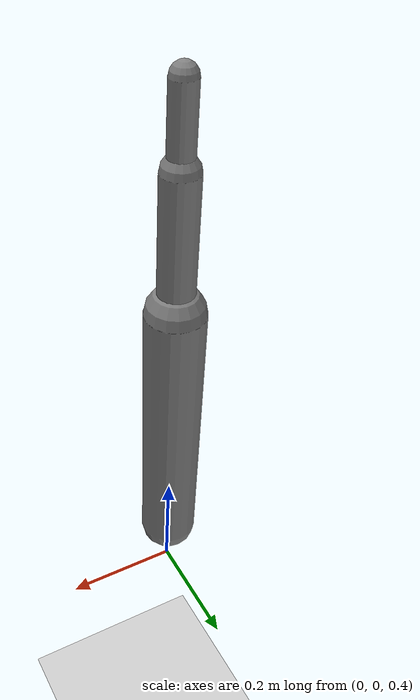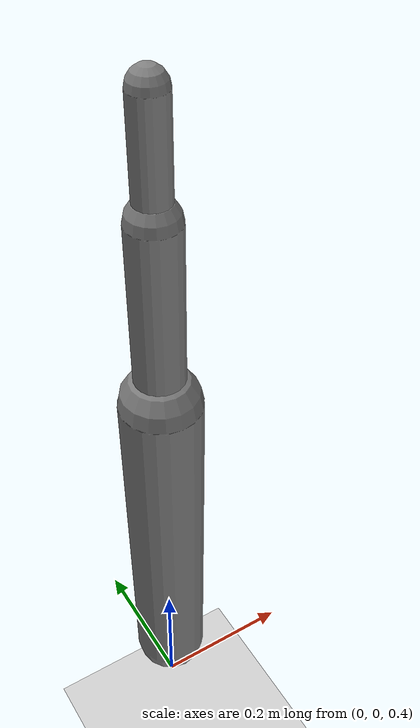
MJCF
<?xml version='1.0' encoding='UTF-8'?>
<mujoco model="RobotModel">
  <option gravity="0 0 -9.81" timestep="0.002" solver="CG" iterations="500" integrator="Euler"/>
  <worldbody>
    <geom name="Floor" type="plane" size="10 10 0.1" pos="0 0 0" rgba="0.8 0.8 0.8 1"/>
    <body name="Limb0" pos="0 0 0.5">
      <geom type="capsule" fromto="0 0 0 0 0 0.5" size="0.05" density="1000" contype="1" conaffinity="1"/>
      <body name="Limb0_88615281" pos="0 0 0.5">
        <geom type="capsule" fromto="0 0 0 0 0 0.232164582760073" size="0.030192970448687496" density="800" contype="1" conaffinity="1"/>
        <body name="Limb1_88615281" pos="0 0 0.232164582760073">
          <geom type="capsule" fromto="0 0 0 0 0 0.12658304773929166" size="0.020548185189477035" density="800" contype="1" conaffinity="1"/>
          <joint name="Joint_Limb0_88615281_Limb1_88615281_0" type="hinge" axis="1 0 0" range="-60 60"/>
        </body>
        <joint name="Joint_Limb0_Limb0_88615281_0" type="hinge" axis="1 0 0" range="-60 60"/>
      </body>
    </body>
  </worldbody>
  <actuator>
    <position name="position_Actuator_Joint_Limb0_Limb0_88615281_0" joint="Joint_Limb0_Limb0_88615281_0" gear="1.0"/>
    <position name="position_Actuator_Joint_Limb0_88615281_Limb1_88615281_0" joint="Joint_Limb0_88615281_Limb1_88615281_0" gear="1.0"/>
  </actuator>
</mujoco>
